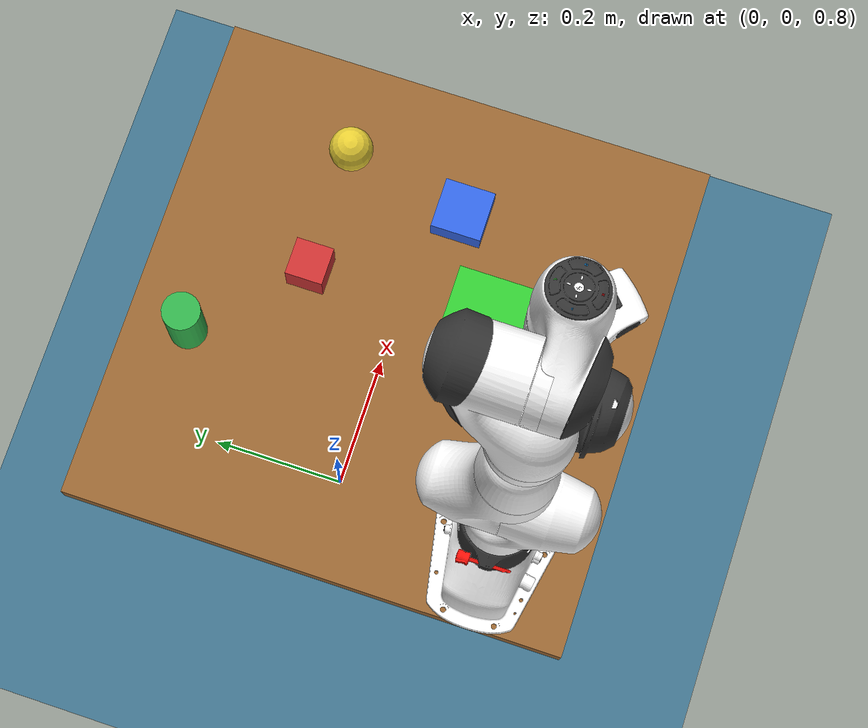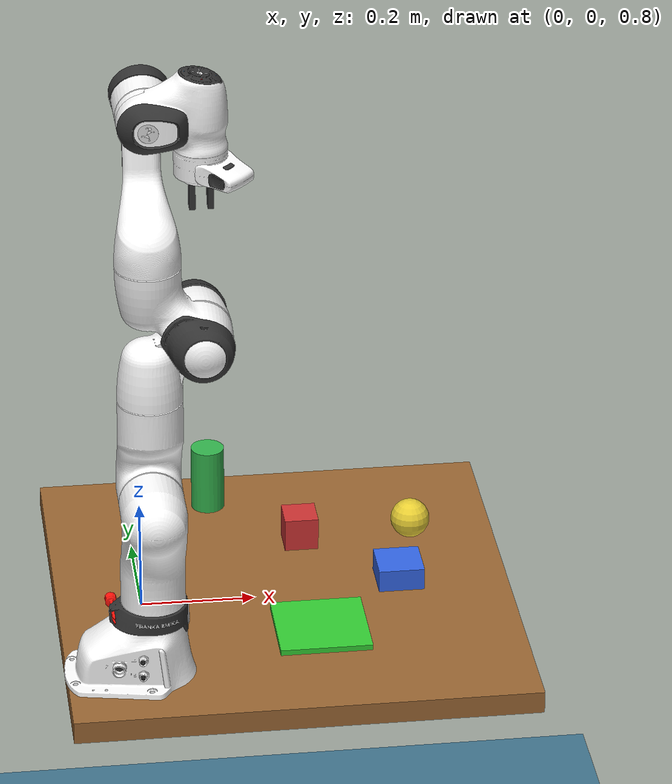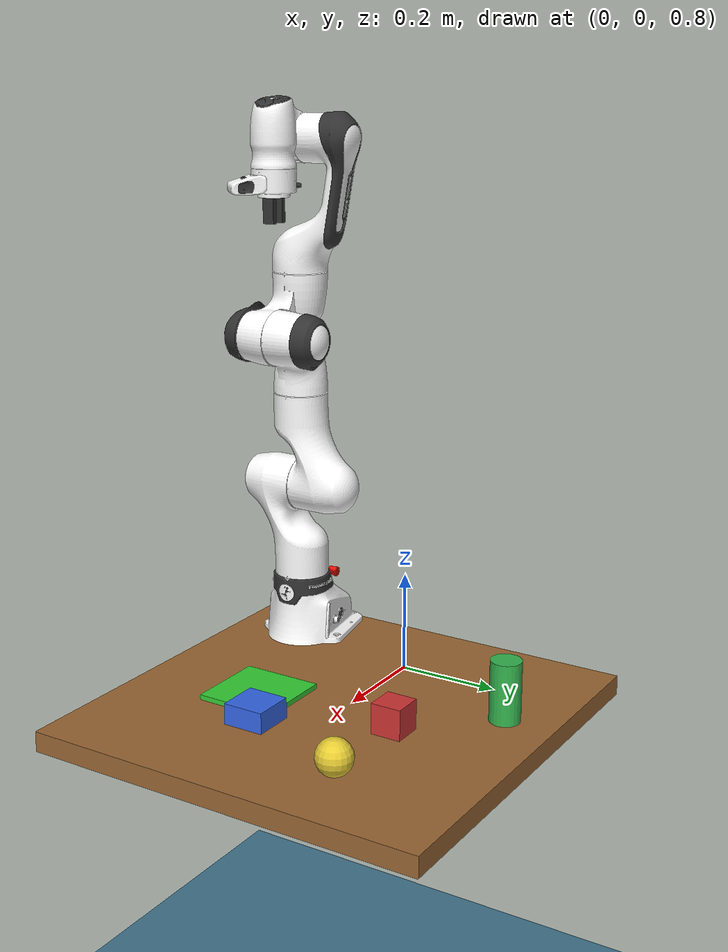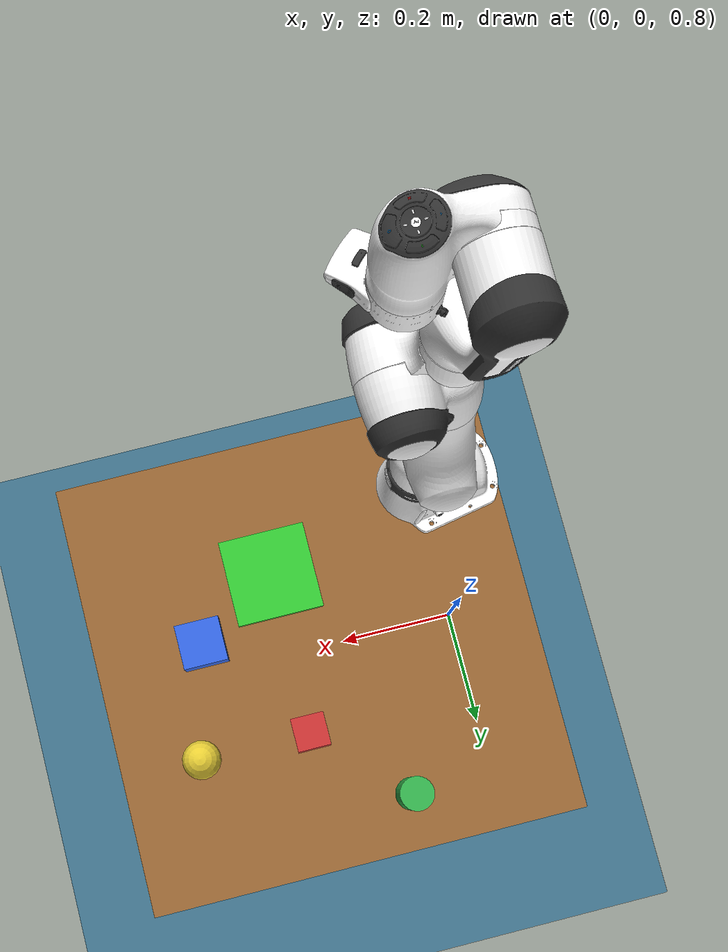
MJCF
<mujoco>
    <include file="fr3.xml"/>
    <compiler angle="radian" autolimits="true"/>
    <option timestep="0.002" gravity="0 0 -9.81"/>

    <asset>
        <texture name="grid" type="2d" builtin="checker"
        width="800" height="800" rgb1=".2 .4 .5" rgb2=".3 .5 .6"/>
        <material name="grid" texture="grid" texrepeat="1 1" reflectance=".2"/>
        <material name="table" rgba="0.6 0.4 0.2 1"/>
    </asset>

    <worldbody>
        <light diffuse="0.9 0.9 0.9" pos="0 0 5" dir="0 0 -1"/>
        <!-- 固定俯视相机：xyaxes 显式定义朝向(x_cam=世界+x, y_cam=世界+y, 视线=-z)，
             不用 tracking 相机——其俯视时 roll 退化、lookat 依赖 stat.center 不可控 -->
        <camera name="top_cam" pos="0.25 0 2.3" xyaxes="1 0 0 0 1 0" fovy="45"/>
        <geom type="plane" size="2 2 0.1" material="grid"/>
        <body name="table" pos="0.25 0 0.8">
            <geom type="box" size="0.4 0.4 0.02"
                  material="table" contype="1" conaffinity="1"/>
        </body>

        <!-- place_zone 标记放在桌面上，与 grasp_planner.place_xy 对齐，远离其他物体 -->
        <body name="place_zone" pos="0.3 -0.15 0.825">
            <geom type="box" size="0.08 0.08 0.005" rgba="0.2 0.8 0.2 1" contype = "0" conaffinity = "0"/>
        </body>

        <body name="cube_red" pos="0.3 0.15 0.85">
            <freejoint/>
            <geom type="box" size="0.03 0.03 0.03"
                  rgba="0.8 0.2 0.2 1"
                  contype="1" conaffinity="1"
                  friction="0.5 0.005 0.0001"/>
        </body>

        <body name="cube_blue" pos="0.45 -0.05 0.87">
            <freejoint/>
            <geom type="box" size="0.04 0.04 0.02"
                  rgba="0.2 0.4 0.9 1"
                  contype="1" conaffinity="1"
                  friction="0.5 0.005 0.0001"/>
        </body>

        <!-- Objects remain at least 14 cm apart to clear the open gripper. -->
        <body name="cyl_green" pos="0.15 0.3 0.88">
            <freejoint/>
            <geom type="cylinder" size="0.03 0.06"
                  rgba="0.2 0.7 0.3 1"
                  contype="1" conaffinity="1"
                  friction="0.5 0.005 0.0001"/>
        </body>

        <body name="sphere_yellow" pos="0.5 0.15 0.855">
            <freejoint/>
            <geom type="sphere" size="0.035"
                  rgba="0.9 0.8 0.2 1"
                  contype="1" conaffinity="1"
                  friction="0.5 0.005 0.0001"/>
        </body>
    </worldbody>

    <contact>
        <!-- 机器人站在桌面上，基座与桌面是静置接触，排除避免无意义接触力 -->
        <exclude body1="table" body2="fr3_link0"/>
    </contact>
</mujoco>

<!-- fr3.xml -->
<mujoco model="fr3">
  <compiler angle="radian" meshdir="assets"/>

  <option integrator="implicitfast"/>

  <default>
    <default class="fr3">
      <!-- Overwritten in joints 5, 6, and 7. -->
      <joint damping="0.21" armature="0.195" frictionloss="1.137"/>
      <position inheritrange="1"/>
      <default class="visual">
        <geom type="mesh" group="2" contype="0" conaffinity="0"/>
      </default>
      <default class="collision">
        <geom type="mesh" group="3" mass="0" density="0"/>
      </default>
      <site size="0.001" rgba="0.5 0.5 0.5 0.3" group="4"/>
    </default>
  </default>

  <asset>
    <material name="black" rgba=".2 .2 .2 1"/>
    <material name="white" rgba="1 1 1 1"/>
    <material name="red" rgba="1 0.072272 0.039546 1"/>
    <material name="gray" rgba="0.863156 0.863156 0.863157 1"/>
    <material name="button_green" rgba="0.102241 0.571125 0.102242 1"/>
    <material name="button_red" rgba="0.520996 0.008023 0.013702 1"/>
    <material name="button_blue" rgba="0.024157 0.445201 0.737911 1"/>

    <mesh file="link0_0.obj"/>
    <mesh file="link0_1.obj"/>
    <mesh file="link0_2.obj"/>
    <mesh file="link0_3.obj"/>
    <mesh file="link0_4.obj"/>
    <mesh file="link0_5.obj"/>
    <mesh file="link0_6.obj"/>
    <mesh file="link1.obj"/>
    <mesh file="link2.obj"/>
    <mesh file="link3_0.obj"/>
    <mesh file="link3_1.obj"/>
    <mesh file="link4_0.obj"/>
    <mesh file="link4_1.obj"/>
    <mesh file="link5_0.obj"/>
    <mesh file="link5_1.obj"/>
    <mesh file="link5_2.obj"/>
    <mesh file="link6_0.obj"/>
    <mesh file="link6_1.obj"/>
    <mesh file="link6_2.obj"/>
    <mesh file="link6_3.obj"/>
    <mesh file="link6_4.obj"/>
    <mesh file="link6_5.obj"/>
    <mesh file="link6_6.obj"/>
    <mesh file="link6_7.obj"/>
    <mesh file="link7_0.obj"/>
    <mesh file="link7_1.obj"/>
    <mesh file="link7_2.obj"/>
    <mesh file="link7_3.obj"/>

    <mesh name="link0_coll" file="link0.stl"/>
    <mesh name="link1_coll" file="link1.stl"/>
    <mesh name="link2_coll" file="link2.stl"/>
    <mesh name="link3_coll" file="link3.stl"/>
    <mesh name="link4_coll" file="link4.stl"/>
    <mesh name="link5_coll" file="link5.stl"/>
    <mesh name="link6_coll" file="link6.stl"/>
    <mesh name="link7_coll" file="link7.stl"/>
  </asset>

  <worldbody>
    <body name="base" childclass="fr3" pos="0 -0.25 0.82">
      <body name="fr3_link0">
        <geom mesh="link0_0" material="black" class="visual"/>
        <geom mesh="link0_1" material="white" class="visual"/>
        <geom mesh="link0_2" material="white" class="visual"/>
        <geom mesh="link0_3" material="white" class="visual"/>
        <geom mesh="link0_4" material="white" class="visual"/>
        <geom mesh="link0_5" material="red" class="visual"/>
        <geom mesh="link0_6" material="black" class="visual"/>
        <geom name="fr3_link0_collision" mesh="link0_coll" class="collision"/>
        <body name="fr3_link1" pos="0 0 0.333">
          <inertial pos="4.128e-07 -0.0181251 -0.0386036" quat="0.998098 -0.0605364 0.00380499 0.0110109" mass="2.92747"
            diaginertia="0.0239286 0.0227246 0.00610634"/>
          <joint name="fr3_joint1" axis="0 0 1" range="-2.7437 2.7437" actuatorfrcrange="-87 87"/>
          <geom name="fr3_link1_collision" class="collision" mesh="link1_coll"/>
          <geom material="white" mesh="link1" class="visual"/>
          <body name="fr3_link2" quat="1 -1 0 0">
            <inertial pos="0.00318289 -0.0743222 0.00881461" quat="0.502599 0.584437 -0.465998 0.434366" mass="2.93554"
              diaginertia="0.0629567 0.0411924 0.0246371"/>
            <joint name="fr3_joint2" axis="0 0 1" range="-1.7837 1.7837" actuatorfrcrange="-87 87"/>
            <geom material="white" mesh="link2" class="visual"/>
            <geom name="fr3_link2_collision" class="collision" mesh="link2_coll"/>
            <body name="fr3_link3" pos="0 -0.316 0" quat="1 1 0 0">
              <inertial pos="0.0407016 -0.00482006 -0.0289731" quat="0.921025 -0.244161 0.155272 0.260745" mass="2.2449"
                diaginertia="0.0267409 0.0189869 0.0171587"/>
              <joint name="fr3_joint3" axis="0 0 1" range="-2.9007 2.9007" actuatorfrcrange="-87 87"/>
              <geom mesh="link3_0" material="white" class="visual"/>
              <geom mesh="link3_1" material="black" class="visual"/>
              <geom name="fr3_link3_collision" class="collision" mesh="link3_coll"/>
              <body name="fr3_link4" pos="0.0825 0 0" quat="1 1 0 0">
                <inertial pos="-0.0459101 0.0630493 -0.00851879" quat="0.438018 0.803311 0.00937812 0.403414"
                  mass="2.6156" diaginertia="0.05139 0.0372717 0.0160047"/>
                <joint name="fr3_joint4" axis="0 0 1" range="-3.0421 -0.1518" actuatorfrcrange="-87 87"/>
                <geom mesh="link4_0" material="white" class="visual"/>
                <geom mesh="link4_1" material="black" class="visual"/>
                <geom name="fr3_link4_collision" class="collision" mesh="link4_coll"/>
                <body name="fr3_link5" pos="-0.0825 0.384 0" quat="1 -1 0 0">
                  <inertial pos="-0.00160396 0.0292536 -0.0972966" quat="0.919031 0.125604 0.0751531 -0.366003"
                    mass="2.32712" diaginertia="0.0579335 0.0449144 0.0130634"/>
                  <joint name="fr3_joint5" axis="0 0 1" range="-2.8065 2.8065" actuatorfrcrange="-12 12"
                    armature="0.074" frictionloss="0.763"/>
                  <geom mesh="link5_0" material="white" class="visual"/>
                  <geom mesh="link5_1" material="white" class="visual"/>
                  <geom mesh="link5_2" material="black" class="visual"/>
                  <geom name="fr3_link5_collision" class="collision" mesh="link5_coll"/>
                  <body name="fr3_link6" quat="1 1 0 0">
                    <inertial pos="0.0597131 -0.0410295 -0.0101693" quat="0.621301 0.552665 0.510011 0.220081"
                      mass="1.81704" diaginertia="0.0175039 0.0161123 0.00193529"/>
                    <joint name="fr3_joint6" axis="0 0 1" range="0.5445 4.5169" actuatorfrcrange="-12 12"
                      armature="0.074" frictionloss="0.44"/>
                    <geom mesh="link6_0" material="button_green" class="visual"/>
                    <geom mesh="link6_1" material="white" class="visual"/>
                    <geom mesh="link6_2" material="white" class="visual"/>
                    <geom mesh="link6_3" material="gray" class="visual"/>
                    <geom mesh="link6_4" material="button_red" class="visual"/>
                    <geom mesh="link6_5" material="white" class="visual"/>
                    <geom mesh="link6_6" material="black" class="visual"/>
                    <geom mesh="link6_7" material="button_blue" class="visual"/>
                    <geom name="fr3_link6_collision" class="collision" mesh="link6_coll"/>
                    <body name="fr3_link7" pos="0.088 0 0" quat="1 1 0 0">
                      <inertial pos="0.00452258 0.00862619 -0.0161633" quat="0.727579 0.0978688 -0.24906 0.63168"
                        mass="0.627143" diaginertia="0.000223836 0.000223642 5.64132e-07"/>
                      <joint name="fr3_joint7" axis="0 0 1" range="-3.0159 3.0159" actuatorfrcrange="-12 12"
                        armature="0.074" frictionloss="0.248"/>
                      <geom mesh="link7_0" material="black" class="visual"/>
                      <geom mesh="link7_1" material="white" class="visual"/>
                      <geom mesh="link7_2" material="white" class="visual"/>
                      <geom mesh="link7_3" material="black" class="visual"/>
                      <geom name="fr3_link7_collision" class="collision" mesh="link7_coll"/>
                      <site name="attachment_site" pos="0 0 0.107"/>
                      <!-- Finger joints override the arm defaults; qpos 0/0.04 means closed/open. -->
                      <body name="finger_left" pos="0.015 0 0.107">
                        <joint name="finger_joint1" type="slide" axis="1 0 0" range="0 0.04"
                               damping="0.5" armature="0.001" frictionloss="0"/>
                        <geom name="finger_left_geom" type="box" size="0.005 0.012 0.025" pos="0 0 0.025"
                              rgba="0.2 0.2 0.2 1" friction="1 0.005 0.0001"/>
                      </body>
                      <body name="finger_right" pos="-0.015 0 0.107">
                        <joint name="finger_joint2" type="slide" axis="-1 0 0" range="0 0.04"
                               damping="0.5" armature="0.001" frictionloss="0"/>
                        <geom name="finger_right_geom" type="box" size="0.005 0.012 0.025" pos="0 0 0.025"
                              rgba="0.2 0.2 0.2 1" friction="1 0.005 0.0001"/>
                      </body>
                    </body>
                  </body>
                </body>
              </body>
            </body>
          </body>
        </body>
      </body>
    </body>
  </worldbody>

  <actuator>
    <position class="fr3" name="fr3_joint1" joint="fr3_joint1" kp="4500" kv="450"/>
    <position class="fr3" name="fr3_joint2" joint="fr3_joint2" kp="4500" kv="450"/>
    <position class="fr3" name="fr3_joint3" joint="fr3_joint3" kp="3500" kv="350"/>
    <position class="fr3" name="fr3_joint4" joint="fr3_joint4" kp="3500" kv="350"/>
    <position class="fr3" name="fr3_joint5" joint="fr3_joint5" kp="2000" kv="200"/>
    <position class="fr3" name="fr3_joint6" joint="fr3_joint6" kp="2000" kv="200"/>
    <position class="fr3" name="fr3_joint7" joint="fr3_joint7" kp="2000" kv="200"/>
    <!-- Tuned for stable contact with the 3 cm benchmark cube. -->
    <position name="finger_act1" joint="finger_joint1" kp="1000" kv="40" ctrlrange="0 0.04" forcerange="-20 20"/>
    <position name="finger_act2" joint="finger_joint2" kp="1000" kv="40" ctrlrange="0 0.04" forcerange="-20 20"/>
  </actuator>

  <contact>
    <exclude body1="fr3_link0" body2="fr3_link1"/>
  </contact>

  <keyframe>
    <!-- The home keyframe covers the seven arm joints and two finger joints. -->
    <key name="home" qpos="0 0 0 -1.57079 0 1.57079 -0.7853 0.04 0.04" ctrl="0 0 0 -1.57079 0 1.57079 -0.7853 0.04 0.04"/>
  </keyframe>
</mujoco>
